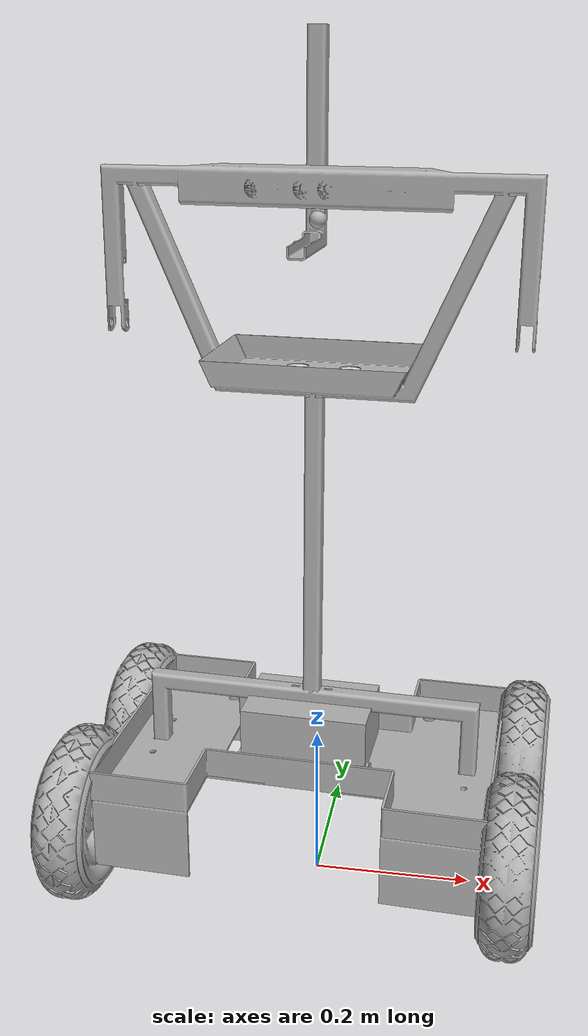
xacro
<?xml version="1.0" ?>
<robot name="museum_robo_imp" xmlns:xacro="http://www.ros.org/wiki/xacro">

<xacro:include filename="$(find museum_robo_imp_description)/urdf/materials.xacro" />
<xacro:include filename="$(find museum_robo_imp_description)/urdf/museum_robo_imp.trans" />
<xacro:include filename="$(find museum_robo_imp_description)/urdf/museum_robo_imp.gazebo" />

<link name="base_link">
  <inertial>
    <origin xyz="0.005503729856500313 -0.075575043772275 0.19926518483204297" rpy="0 0 0"/>
    <mass value="4.035587576084494"/>
    <inertia ixx="0.045115" iyy="0.116457" izz="0.156496" ixy="0.003471" iyz="-0.000109" ixz="0.000397"/>
  </inertial>
  <visual>
    <origin xyz="0 0 0" rpy="0 0 0"/>
    <geometry>
      <mesh filename="package://museum_robo_imp_description/meshes/base_link.stl" scale="0.001 0.001 0.001"/>
    </geometry>
    <material name="silver"/>
  </visual>
  <collision>
    <origin xyz="0 0 0" rpy="0 0 0"/>
    <geometry>
      <mesh filename="package://museum_robo_imp_description/meshes/base_link.stl" scale="0.001 0.001 0.001"/>
    </geometry>
  </collision>
</link>
<link name ="camera_link">
</link>
<link name ="imu_link">
</link>
<link name="battery_frame_1">
  <inertial>
    <origin xyz="-0.017395627823649742 -0.1620783129785187 0.22812361273034176" rpy="0 0 0"/>
    <mass value="0.02192036028338395"/>
    <inertia ixx="2e-06" iyy="2e-06" izz="3e-06" ixy="-1e-06" iyz="0.0" ixz="-0.0"/>
  </inertial>
  <visual>
    <origin xyz="-0.090281 -0.037716 0.002663" rpy="0 0 0"/>
    <geometry>
      <mesh filename="package://museum_robo_imp_description/meshes/battery_frame_1.stl" scale="0.001 0.001 0.001"/>
    </geometry>
    <material name="silver"/>
  </visual>
  <collision>
    <origin xyz="-0.090281 -0.037716 0.002663" rpy="0 0 0"/>
    <geometry>
      <mesh filename="package://museum_robo_imp_description/meshes/battery_frame_1.stl" scale="0.001 0.001 0.001"/>
    </geometry>
  </collision>
</link>

<link name="battery_frame_2">
  <inertial>
    <origin xyz="-0.01310591070838156 0.022945325448270156 0.2293312441237733" rpy="0 0 0"/>
    <mass value="0.02192036028338395"/>
    <inertia ixx="2e-06" iyy="2e-06" izz="3e-06" ixy="-1e-06" iyz="-0.0" ixz="0.0"/>
  </inertial>
  <visual>
    <origin xyz="0.050219 0.049782 0.003089" rpy="0 0 0"/>
    <geometry>
      <mesh filename="package://museum_robo_imp_description/meshes/battery_frame_2.stl" scale="0.001 0.001 0.001"/>
    </geometry>
    <material name="silver"/>
  </visual>
  <collision>
    <origin xyz="0.050219 0.049782 0.003089" rpy="0 0 0"/>
    <geometry>
      <mesh filename="package://museum_robo_imp_description/meshes/battery_frame_2.stl" scale="0.001 0.001 0.001"/>
    </geometry>
  </collision>
</link>

<link name="battery_1">
  <inertial>
    <origin xyz="-0.07120174112136368 0.0736142277531775 0.032965232718102866" rpy="0 0 0"/>
    <mass value="3.1172686605849664"/>
    <inertia ixx="0.003943" iyy="0.007812" izz="0.009049" ixy="0.00017" iyz="-4e-06" ixz="2.1e-05"/>
  </inertial>
  <visual>
    <origin xyz="-0.076531 0.129153 -0.226981" rpy="0 0 0"/>
    <geometry>
      <mesh filename="package://museum_robo_imp_description/meshes/battery_1.stl" scale="0.001 0.001 0.001"/>
    </geometry>
    <material name="silver"/>
  </visual>
  <collision>
    <origin xyz="-0.076531 0.129153 -0.226981" rpy="0 0 0"/>
    <geometry>
      <mesh filename="package://museum_robo_imp_description/meshes/battery_1.stl" scale="0.001 0.001 0.001"/>
    </geometry>
  </collision>
</link>

<link name="base_1_1">
  <inertial>
    <origin xyz="-0.00924676413706671 -0.1266624216791446 0.22720455796956518" rpy="0 0 0"/>
    <mass value="0.26962977599999993"/>
    <inertia ixx="0.00206" iyy="3.8e-05" izz="0.002032" ixy="-9.9e-05" iyz="-4e-06" ixz="-0.0"/>
  </inertial>
  <visual>
    <origin xyz="-0.237281 -0.040189 -0.002733" rpy="0 0 0"/>
    <geometry>
      <mesh filename="package://museum_robo_imp_description/meshes/base_1_1.stl" scale="0.001 0.001 0.001"/>
    </geometry>
    <material name="silver"/>
  </visual>
  <collision>
    <origin xyz="-0.237281 -0.040189 -0.002733" rpy="0 0 0"/>
    <geometry>
      <mesh filename="package://museum_robo_imp_description/meshes/base_1_1.stl" scale="0.001 0.001 0.001"/>
    </geometry>
  </collision>
</link>

<link name="base_2_1">
  <inertial>
    <origin xyz="-0.005714817125201055 -0.10494396785031085 0.22909110004657537" rpy="0 0 0"/>
    <mass value="0.26962977599999993"/>
    <inertia ixx="0.00206" iyy="3.8e-05" izz="0.002032" ixy="-9.9e-05" iyz="-4e-06" ixz="-0.0"/>
  </inertial>
  <visual>
    <origin xyz="0.212719 -0.040194 -0.002682" rpy="0 0 0"/>
    <geometry>
      <mesh filename="package://museum_robo_imp_description/meshes/base_2_1.stl" scale="0.001 0.001 0.001"/>
    </geometry>
    <material name="silver"/>
  </visual>
  <collision>
    <origin xyz="0.212719 -0.040194 -0.002682" rpy="0 0 0"/>
    <geometry>
      <mesh filename="package://museum_robo_imp_description/meshes/base_2_1.stl" scale="0.001 0.001 0.001"/>
    </geometry>
  </collision>
</link>

<link name="base_4_1">
  <inertial>
    <origin xyz="-0.053066963350340376 -0.2688489011095625 0.23497879327221188" rpy="0 0 0"/>
    <mass value="0.5099394409501705"/>
    <inertia ixx="0.000707" iyy="0.008018" izz="0.008613" ixy="0.000357" iyz="-0.0" ixz="3.3e-05"/>
  </inertial>
  <visual>
    <origin xyz="-0.052282 -0.078209 0.000978" rpy="0 0 0"/>
    <geometry>
      <mesh filename="package://museum_robo_imp_description/meshes/base_4_1.stl" scale="0.001 0.001 0.001"/>
    </geometry>
    <material name="silver"/>
  </visual>
  <collision>
    <origin xyz="-0.052282 -0.078209 0.000978" rpy="0 0 0"/>
    <geometry>
      <mesh filename="package://museum_robo_imp_description/meshes/base_4_1.stl" scale="0.001 0.001 0.001"/>
    </geometry>
  </collision>
</link>

<link name="base_3_1">
  <inertial>
    <origin xyz="-0.04186743969423119 0.11718891377822814 0.2362249914683265" rpy="0 0 0"/>
    <mass value="0.5099394409501705"/>
    <inertia ixx="0.000707" iyy="0.008018" izz="0.008613" ixy="0.000357" iyz="-6e-06" ixz="3.2e-05"/>
  </inertial>
  <visual>
    <origin xyz="-0.05228 0.077789 0.001708" rpy="0 0 0"/>
    <geometry>
      <mesh filename="package://museum_robo_imp_description/meshes/base_3_1.stl" scale="0.001 0.001 0.001"/>
    </geometry>
    <material name="silver"/>
  </visual>
  <collision>
    <origin xyz="-0.05228 0.077789 0.001708" rpy="0 0 0"/>
    <geometry>
      <mesh filename="package://museum_robo_imp_description/meshes/base_3_1.stl" scale="0.001 0.001 0.001"/>
    </geometry>
  </collision>
</link>

<link name="wheel_4_1">
  <inertial>
    <origin xyz="0.027826737738594592 -0.0013536106522436253 -0.0001146554693908508" rpy="0 0 0"/>
    <mass value="5.180977168001354"/>
    <inertia ixx="0.034525" iyy="0.01875" izz="0.018713" ixy="-0.000769" iyz="3e-06" ixz="-6.5e-05"/>
  </inertial>
  <visual>
    <origin xyz="-0.220779 0.199752 -0.171233" rpy="0 0 0"/>
    <geometry>
      <mesh filename="package://museum_robo_imp_description/meshes/wheel_4_1.stl" scale="0.001 0.001 0.001"/>
    </geometry>
    <material name="silver"/>
  </visual>
  <collision>
    <origin xyz="-0.220779 0.199752 -0.171233" rpy="0 0 0"/>
    <geometry>
      <mesh filename="package://museum_robo_imp_description/meshes/wheel_4_1.stl" scale="0.001 0.001 0.001"/>
    </geometry>
  </collision>
</link>

<link name="wheel_1">
  <inertial>
    <origin xyz="-0.0278259884915584 0.0013535410220804345 0.00011468832746730495" rpy="0 0 0"/>
    <mass value="5.1809771680013545"/>
    <inertia ixx="0.034525" iyy="0.01875" izz="0.018713" ixy="-0.000769" iyz="3e-06" ixz="-6.5e-05"/>
  </inertial>
  <visual>
    <origin xyz="0.225689 0.178028 -0.173068" rpy="0 0 0"/>
    <geometry>
      <mesh filename="package://museum_robo_imp_description/meshes/wheel_1.stl" scale="0.001 0.001 0.001"/>
    </geometry>
    <material name="silver"/>
  </visual>
  <collision>
    <origin xyz="0.225689 0.178028 -0.173068" rpy="0 0 0"/>
    <geometry>
      <mesh filename="package://museum_robo_imp_description/meshes/wheel_1.stl" scale="0.001 0.001 0.001"/>
    </geometry>
  </collision>
</link>

<link name="wheel_2_1">
  <inertial>
    <origin xyz="-0.027826535509372557 0.0013540838101739339 0.00011404734197495436" rpy="0 0 0"/>
    <mass value="5.180977168001355"/>
    <inertia ixx="0.034525" iyy="0.01875" izz="0.018713" ixy="-0.000769" iyz="3e-06" ixz="-6.5e-05"/>
  </inertial>
  <visual>
    <origin xyz="0.214642 -0.048959 -0.173578" rpy="0 0 0"/>
    <geometry>
      <mesh filename="package://museum_robo_imp_description/meshes/wheel_2_1.stl" scale="0.001 0.001 0.001"/>
    </geometry>
    <material name="silver"/>
  </visual>
  <collision>
    <origin xyz="0.214642 -0.048959 -0.173578" rpy="0 0 0"/>
    <geometry>
      <mesh filename="package://museum_robo_imp_description/meshes/wheel_2_1.stl" scale="0.001 0.001 0.001"/>
    </geometry>
  </collision>
</link>

<link name="wheel_3_1">
  <inertial>
    <origin xyz="0.027826190720778937 -0.0013540678641512788 -0.00011429645488297835" rpy="0 0 0"/>
    <mass value="5.180977168001353"/>
    <inertia ixx="0.034525" iyy="0.01875" izz="0.018713" ixy="-0.000769" iyz="3e-06" ixz="-6.5e-05"/>
  </inertial>
  <visual>
    <origin xyz="-0.231826 -0.027236 -0.171742" rpy="0 0 0"/>
    <geometry>
      <mesh filename="package://museum_robo_imp_description/meshes/wheel_3_1.stl" scale="0.001 0.001 0.001"/>
    </geometry>
    <material name="silver"/>
  </visual>
  <collision>
    <origin xyz="-0.231826 -0.027236 -0.171742" rpy="0 0 0"/>
    <geometry>
      <mesh filename="package://museum_robo_imp_description/meshes/wheel_3_1.stl" scale="0.001 0.001 0.001"/>
    </geometry>
  </collision>
</link>

<link name="cam_1">
  <inertial>
    <origin xyz="0.18198608416002604 -0.09982910525723863 0.8011028298356982" rpy="0 0 0"/>
    <mass value="7.291552618339808"/>
    <inertia ixx="0.257905" iyy="0.320723" izz="0.072869" ixy="0.003853" iyz="0.015783" ixz="-0.004761"/>
  </inertial>
  <visual>
    <origin xyz="0.167719 -0.000219 0.002868" rpy="0 0 0"/>
    <geometry>
      <mesh filename="package://museum_robo_imp_description/meshes/cam_1.stl" scale="0.001 0.001 0.001"/>
    </geometry>
    <material name="silver"/>
  </visual>
  <collision>
    <origin xyz="0.167719 -0.000219 0.002868" rpy="0 0 0"/>
    <geometry>
      <mesh filename="package://museum_robo_imp_description/meshes/cam_1.stl" scale="0.001 0.001 0.001"/>
    </geometry>
  </collision>
</link>

<joint name="camera_joint" type="fixed">
    <parent link="base_link"/>
    <child link="camera_link"/>
    <origin xyz="0 -0.15 0.5" rpy="0 0  -1.57"/>
</joint>

<joint name="imu_link_1" type="fixed">
    <parent link="base_link"/>
    <child link="imu_link"/>
    <origin xyz="0 0 0.173068" rpy="0 0  0"/>
</joint>

<joint name="rigid_14" type="fixed">
  <origin xyz="0.090281 0.037716 -0.002663" rpy="0 0 0"/>
  <parent link="base_link"/>
  <child link="battery_frame_1"/>
</joint>

<joint name="rigid_15" type="fixed">
  <origin xyz="-0.050219 -0.049782 -0.003089" rpy="0 0 0"/>
  <parent link="base_link"/>
  <child link="battery_frame_2"/>
</joint>

<joint name="rigid_16" type="fixed">
  <origin xyz="-0.01375 -0.166869 0.229644" rpy="0 0 0"/>
  <parent link="battery_frame_1"/>
  <child link="battery_1"/>
</joint>

<joint name="Rigid 55" type="fixed">
  <origin xyz="0.237281 0.040189 0.002733" rpy="0 0 0"/>
  <parent link="base_link"/>
  <child link="base_1_1"/>
</joint>

<joint name="Rigid 56" type="fixed">
  <origin xyz="-0.212719 0.040194 0.002682" rpy="0 0 0"/>
  <parent link="base_link"/>
  <child link="base_2_1"/>
</joint>

<joint name="Rigid 57" type="fixed">
  <origin xyz="0.052282 0.078209 -0.000978" rpy="0 0 0"/>
  <parent link="base_link"/>
  <child link="base_4_1"/>
</joint>

<joint name="Rigid 59" type="fixed">
  <origin xyz="0.05228 -0.077789 -0.001708" rpy="0 0 0"/>
  <parent link="base_link"/>
  <child link="base_3_1"/>
</joint>

<joint name="fr" type="continuous">
  <origin xyz="0.220779 -0.199752 0.171233" rpy="0 0 0"/>
  <parent link="base_link"/>
  <child link="wheel_4_1"/>
  <axis xyz="0.99881 -0.048598 -0.004106"/>
</joint>

<joint name="fl" type="continuous">
  <origin xyz="-0.225689 -0.178028 0.173068" rpy="0 0 0"/>
  <parent link="base_link"/>
  <child link="wheel_1"/>
  <axis xyz="0.99881 -0.048598 -0.004106"/>
</joint>

<joint name="rl" type="continuous">
  <origin xyz="-0.214642 0.048959 0.173578" rpy="0 0 0"/>
  <parent link="base_link"/>
  <child link="wheel_2_1"/>
  <axis xyz="0.99881 -0.048598 -0.004106"/>
</joint>

<joint name="rr" type="continuous">
  <origin xyz="0.231826 0.027236 0.171742" rpy="0 0 0"/>
  <parent link="base_link"/>
  <child link="wheel_3_1"/>
  <axis xyz="0.99881 -0.048598 -0.004106"/>
</joint>

<joint name="Rigid 81" type="fixed">
  <origin xyz="-0.167719 0.000219 -0.002868" rpy="0 0 0"/>
  <parent link="base_link"/>
  <child link="cam_1"/>
</joint>

</robot>

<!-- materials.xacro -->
<robot name="museum_robo_imp" xmlns:xacro="http://www.ros.org/wiki/xacro" >

<material name="silver">
  <color rgba="0.700 0.700 0.700 1.000"/>
</material>

</robot>

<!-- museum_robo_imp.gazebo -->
<robot name="museum_robo_imp" xmlns:xacro="http://www.ros.org/wiki/xacro" >

<xacro:property name="body_color" value="Gazebo/Silver" />

<gazebo>
  <plugin name="control" filename="libgazebo_ros_control.so"/>
</gazebo>
<gazebo reference="base_link">
  <material>${body_color}</material>
  <mu1>0.2</mu1>
  <mu2>0.2</mu2>
  <selfCollide>true</selfCollide>
  <gravity>true</gravity>
</gazebo>

<gazebo reference="battery_frame_1">
  <material>${body_color}</material>
  <mu1>0.2</mu1>
  <mu2>0.2</mu2>
  <selfCollide>true</selfCollide>
</gazebo>

<gazebo reference="battery_frame_2">
  <material>${body_color}</material>
  <mu1>0.2</mu1>
  <mu2>0.2</mu2>
  <selfCollide>true</selfCollide>
</gazebo>

<gazebo reference="battery_1">
  <material>${body_color}</material>
  <mu1>0.2</mu1>
  <mu2>0.2</mu2>
  <selfCollide>true</selfCollide>
</gazebo>

<gazebo reference="base_1_1">
  <material>${body_color}</material>
  <mu1>0.2</mu1>
  <mu2>0.2</mu2>
  <selfCollide>true</selfCollide>
</gazebo>

<gazebo reference="base_2_1">
  <material>${body_color}</material>
  <mu1>0.2</mu1>
  <mu2>0.2</mu2>
  <selfCollide>true</selfCollide>
</gazebo>

<gazebo reference="base_4_1">
  <material>${body_color}</material>
  <mu1>0.4</mu1>
  <mu2>0.4</mu2>
  <selfCollide>true</selfCollide>
</gazebo>

<gazebo reference="base_3_1">
  <material>${body_color}</material>
  <mu1>0.2</mu1>
  <mu2>0.2</mu2>
  <selfCollide>true</selfCollide>
</gazebo>

<gazebo reference="wheel_4_1">
  <material>${body_color}</material>
  <mu1>0.4</mu1>
  <mu2>0.4</mu2>
  <selfCollide>true</selfCollide>
</gazebo>

<gazebo reference="wheel_1">
  <material>${body_color}</material>
  <mu1>0.4</mu1>
  <mu2>0.4</mu2>
  <selfCollide>true</selfCollide>
</gazebo>

<gazebo reference="wheel_2_1">
  <material>${body_color}</material>
  <mu1>0.4</mu1>
  <mu2>0.4</mu2>
  <selfCollide>true</selfCollide>
</gazebo>

<gazebo reference="wheel_3_1">
  <material>${body_color}</material>
  <mu1>2</mu1>
  <mu2>2</mu2>
  <selfCollide>true</selfCollide>
</gazebo>

<gazebo reference="cam_1">
  <material>${body_color}</material>
  <mu1>0.2</mu1>
  <mu2>0.2</mu2>
  <selfCollide>true</selfCollide>
</gazebo>

<gazebo>
  <plugin name="skid_steer_drive_controller" filename="libgazebo_ros_skid_steer_drive.so">
    <updateRate>10</updateRate>
    <robotNamespace>/</robotNamespace>
    <leftFrontJoint>fl</leftFrontJoint>
    <rightFrontJoint>fr</rightFrontJoint>
    <leftRearJoint>rl</leftRearJoint>
    <rightRearJoint>rr</rightRearJoint>
    <wheelSeparation>0.45</wheelSeparation>
    <wheelDiameter>0.087</wheelDiameter>
    <robotBaseFrame>base_link</robotBaseFrame>
    <torque>5</torque>
    <topicName>cmd_vel</topicName>
    <odometryTopic>odom</odometryTopic>
    <odometryFrame>odom</odometryFrame>
    <broadcastTF>true</broadcastTF>
  </plugin>
</gazebo>

<gazebo reference="camera_link">
    <sensor type="depth" name="camera">
      <always_on>true</always_on>
      <update_rate>30</update_rate>
      <camera>
        <horizontal_fov>1.0471975512</horizontal_fov>
        <image>
          <format>B8G8R8</format>
          <width>640</width>
          <height>480</height>
        </image>
        <clip>
          <near>0.40</near>
          <far>20.0</far>
        </clip>
      </camera>
      <plugin name="kinect_camera_controller" filename="libgazebo_ros_openni_kinect.so">
        <cameraName>camera</cameraName>
        <alwaysOn>true</alwaysOn>
        <updateRate>50</updateRate>
        <imageTopicName>rgb/image_raw</imageTopicName>
        <depthImageTopicName>depth/image_raw</depthImageTopicName>
        <pointCloudTopicName>depth/points</pointCloudTopicName>
        <cameraInfoTopicName>rgb/camera_info</cameraInfoTopicName>
        <depthImageCameraInfoTopicName>depth/camera_info</depthImageCameraInfoTopicName>
        <frameName>camera_link</frameName>
        <baseline>0.1</baseline>
        <distortion_k1>0.0</distortion_k1>
        <distortion_k2>0.0</distortion_k2>
        <distortion_k3>0.0</distortion_k3>
        <distortion_t1>0.0</distortion_t1>
        <distortion_t2>0.0</distortion_t2>
        <pointCloudCutoff>0.45</pointCloudCutoff>
        <pointCloudCutoffMax>16</pointCloudCutoffMax>
      </plugin>
    </sensor>
  </gazebo>

<gazebo reference="camera_link">
    <sensor type="ray" name="head_hokuyo_sensor">
      <pose>0 0 0 0 0 0</pose>
      <visualize>true</visualize>
      <update_rate>40</update_rate>
      <ray>
        <scan>
          <horizontal>
            <samples>720</samples>
            <resolution>1</resolution>
            <min_angle>-1.570796</min_angle>
            <max_angle>1.570796</max_angle>
          </horizontal>
        </scan>
        <range>
          <min>0.10</min>
          <max>30.0</max>
          <resolution>0.01</resolution>
        </range>
        <noise>
          <type>gaussian</type>
          <mean>0.0</mean>
          <stddev>0.01</stddev>
        </noise>
      </ray>
      <plugin name="gazebo_ros_head_hokuyo_controller" filename="libgazebo_ros_laser.so">
        <topicName>/scan</topicName>
        <frameName>camera_link</frameName>
      </plugin>
    </sensor>
  </gazebo>

</robot>
